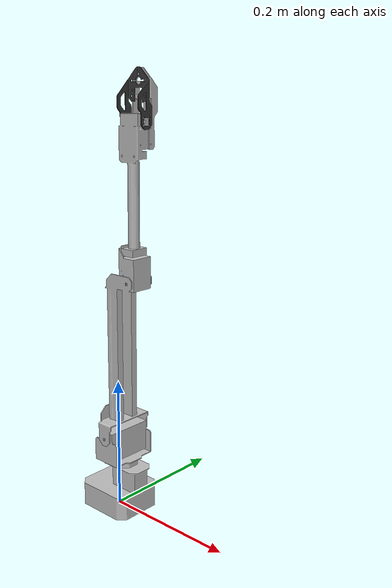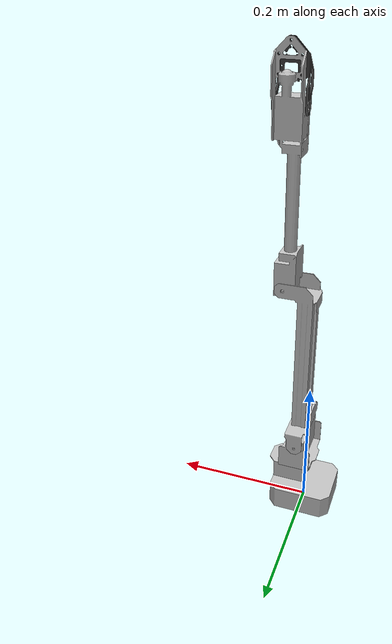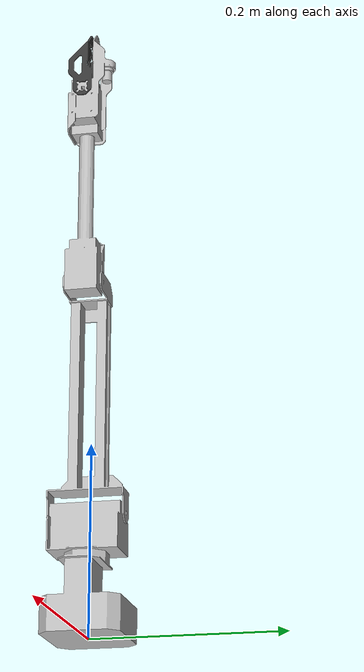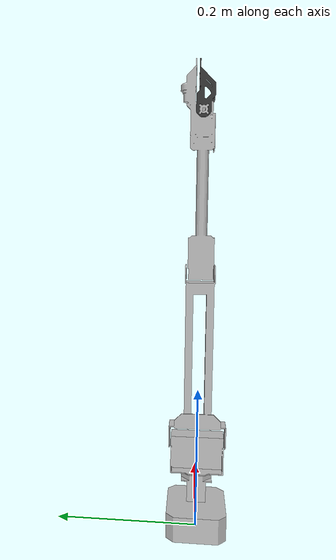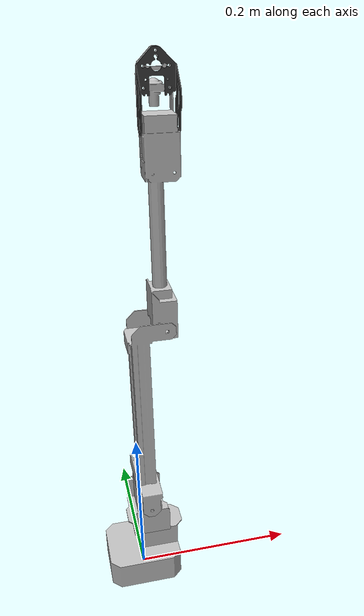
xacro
<?xml version="1.0"?>
<robot xmlns:xacro="http://www.ros.org/wiki/xacro" name="roarm_description">
    <xacro:arg name="initial_positions_file" default="initial_positions.yaml" />

    <!-- Import roarm_description urdf file -->
    <xacro:include filename="$(find roarm_description)/urdf/roarm_description.urdf" />

    <!-- Import control_xacro -->
    <xacro:include filename="roarm_description.ros2_control.xacro" />

    <xacro:roarm_description_ros2_control name="FakeSystem" initial_positions_file="$(arg initial_positions_file)"/>

</robot>

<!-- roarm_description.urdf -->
<robot
  name="roarm_description">
  <link
    name="base_link">
    <inertial>
      <origin
        xyz="0.00373847392098165 -1.52445893441182E-10 0.0264265327292804"
        rpy="0 0 0" />
      <mass
        value="0.326392759093976" />
      <inertia
        ixx="0.000224202818963409"
        ixy="-1.96773409846652E-13"
        ixz="-2.99224798427881E-05"
        iyy="0.000286616921839535"
        iyz="-3.10964171549742E-13"
        izz="0.000349957607258242" />
    </inertial>
    <visual>
      <origin
        xyz="0 0 0"
        rpy="0 0 0" />
      <geometry>
        <mesh
          filename="package://roarm_description/meshes/base_link.STL" />
      </geometry>
      <material
        name="">
        <color
          rgba="0.752941176470588 0.752941176470588 0.752941176470588 1" />
      </material>
    </visual>
    <collision>
      <origin
        xyz="0 0 0"
        rpy="0 0 0" />
      <geometry>
        <mesh
          filename="package://roarm_description/meshes/base_link.STL" />
      </geometry>
    </collision>
  </link>
  <link
    name="link1">
    <inertial>
      <origin
        xyz="-0.000140654613854069 -2.04804445311914E-05 0.0248060289552964"
        rpy="0 0 0" />
      <mass
        value="0.0928887601998397" />
      <inertia
        ixx="6.09210980255232E-05"
        ixy="-2.78746155635367E-18"
        ixz="4.24841544707896E-15"
        iyy="2.53493566630784E-05"
        iyz="2.16442830142327E-08"
        izz="4.88050835919342E-05" />
    </inertial>
    <visual>
      <origin
        xyz="0 0 0"
        rpy="0 0 0" />
      <geometry>
        <mesh
          filename="package://roarm_description/meshes/link1.STL" />
      </geometry>
      <material
        name="">
        <color
          rgba="0.752941176470588 0.752941176470588 0.752941176470588 1" />
      </material>
    </visual>
    <collision>
      <origin
        xyz="0 0 0"
        rpy="0 0 0" />
      <geometry>
        <mesh
          filename="package://roarm_description/meshes/link1.STL" />
      </geometry>
    </collision>
  </link>
  <joint
    name="base_link_to_link1"
    type="revolute">
    <origin
      xyz="0.01 0 0.0836"
      rpy="0 0 0" />
    <parent
      link="base_link" />
    <child
      link="link1" />
    <axis
      xyz="0 0 1" />
    <limit
      lower="-3.1415926"
      upper="3.1415926"
      effort="0"
      velocity="0" />
  </joint>
  <link
    name="link2">
    <inertial>
      <origin
        xyz="0.122007657068629 0.000206805020594048 -9.50311342870328E-05"
        rpy="0 0 0" />
      <mass
        value="0.0895817175833772" />
      <inertia
        ixx="2.6269354271334E-05"
        ixy="-2.55344668379587E-06"
        ixz="-3.90237379833511E-09"
        iyy="0.000350369536011832"
        iyz="-6.82396195680567E-09"
        izz="0.000333056833230846" />
    </inertial>
    <visual>
      <origin
        xyz="0 0 0"
        rpy="0 0 0" />
      <geometry>
        <mesh
          filename="package://roarm_description/meshes/link2.STL" />
      </geometry>
      <material
        name="">
        <color
          rgba="0.752941176470588 0.752941176470588 0.752941176470588 1" />
      </material>
    </visual>
    <collision>
      <origin
        xyz="0 0 0"
        rpy="0 0 0" />
      <geometry>
        <mesh
          filename="package://roarm_description/meshes/link2.STL" />
      </geometry>
    </collision>
  </link>
  <joint
    name="link1_to_link2"
    type="revolute">
    <origin
      xyz="0 0.03618 0.039473"
      rpy="-1.5708 -1.5708 0" />
    <parent
      link="link1" />
    <child
      link="link2" />
    <axis
      xyz="0 0 -1" />
    <limit
      lower="-1.5708"
      upper="1.5708"
      effort="0"
      velocity="0" />
  </joint>
  <link
    name="link3">
    <inertial>
      <origin
        xyz="0.114419656440925 -0.000762809457408361 -0.000177274968087197"
        rpy="0 0 0" />
      <mass
        value="0.123009044986454" />
      <inertia
        ixx="1.46357151076022E-05"
        ixy="-1.06443789581449E-07"
        ixz="1.6435520156444E-07"
        iyy="0.000104111883333949"
        iyz="1.54925816846056E-07"
        izz="0.000104009297710106" />
    </inertial>
    <visual>
      <origin
        xyz="0 0 0"
        rpy="0 0 0" />
      <geometry>
        <mesh
          filename="package://roarm_description/meshes/link3.STL" />
      </geometry>
      <material
        name="">
        <color
          rgba="0.752941176470588 0.752941176470588 0.752941176470588 1" />
      </material>
    </visual>
    <collision>
      <origin
        xyz="0 0 0"
        rpy="0 0 0" />
      <geometry>
        <mesh
          filename="package://roarm_description/meshes/link3.STL" />
      </geometry>
    </collision>
  </link>
  <joint
    name="link2_to_link3"
    type="revolute">
    <origin
      xyz="0.2368 0.030002 -0.01607"
      rpy="0 0 0" />
    <parent
      link="link2" />
    <child
      link="link3" />
    <axis
      xyz="0 0 1" />
    <limit
      lower="-1"
      upper="3.1415926"
      effort="0"
      velocity="0" />
  </joint>
  <link
    name="link4">
    <inertial>
      <origin
        xyz="0.000960013987574684 0.0288857415118807 0.000699860921097348"
        rpy="-3.1415926 0 0" />
      <mass
        value="0.00365697683069397" />
      <inertia
        ixx="2.33034171341163E-06"
        ixy="-1.31250385773153E-07"
        ixz="-4.13922574956767E-13"
        iyy="1.15139272656909E-06"
        iyz="-2.41954533685074E-13"
        izz="1.47179863096272E-06" />
    </inertial>
    <visual>
      <origin
        xyz="0 0 -0.014508"
        rpy="-3.1415926 0 0" />
      <geometry>
        <mesh
          filename="package://roarm_description/meshes/link4.STL" />
      </geometry>
      <material
        name="">
        <color
          rgba="0.219607843137255 0.219607843137255 0.219607843137255 1" />
      </material>
    </visual>
    <collision>
      <origin
        xyz="0 0 -0.014508"
        rpy="-3.1415926 0 0" />
      <geometry>
        <mesh
          filename="package://roarm_description/meshes/link4.STL" />
      </geometry>
    </collision>
  </link>
  <joint
    name="link3_to_link4"
    type="revolute">
    <origin
      xyz="0.21599 0 -0.02096"
      rpy="-1.5708 0 0" />
    <parent
      link="link3" />
    <child
      link="link4" />
    <axis
      xyz="0 0 1" />
    <limit
      lower="0"
      upper="1.5"
      effort="0"
      velocity="0" />
  </joint>
</robot>
